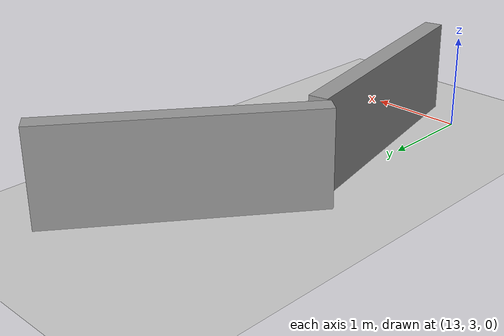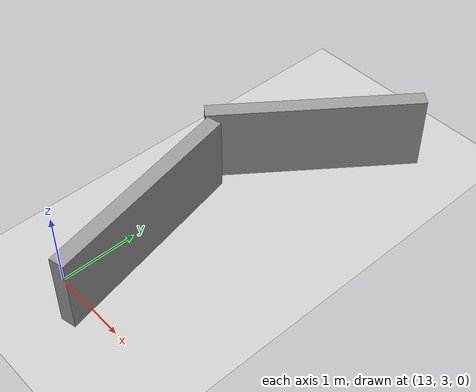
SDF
<sdf version="1.7">
 <world name="default">
  <model name="ground_plane">
   <static>1</static>
   <link name="link">
    <collision name="collision">
     <geometry><plane><normal>0 0 1</normal><size>100 100</size></plane></geometry>
     <surface>
      <contact><collide_bitmask>65535</collide_bitmask></contact>
      <friction><ode><mu>100</mu><mu2>50</mu2></ode></friction>
     </surface>
    </collision>
    <visual name="visual">
     <cast_shadows>0</cast_shadows>
     <geometry><plane><normal>0 0 1</normal><size>100 100</size></plane></geometry>
     <material>
      <script><uri>file://media/materials/scripts/gazebo.material</uri><name>Gazebo/Grey</name></script>
     </material>
    </visual>
   </link>
  </model>
  <model name="unit_box">
   <pose>13.5573 6.44071 0.5 -1e-06 1e-06 -0.647986</pose>
   <link name="link">
    <inertial>
     <mass>1</mass>
     <inertia>
      <ixx>0.166667</ixx>
      <ixy>0</ixy>
      <ixz>0</ixz>
      <iyy>0.166667</iyy>
      <iyz>0</iyz>
      <izz>0.166667</izz>
     </inertia>
    </inertial>
    <collision name="collision"><geometry><box><size>0.198117 2.69832 1</size></box></geometry></collision>
    <visual name="visual">
     <geometry><box><size>0.198117 2.69832 1</size></box></geometry>
     <material>
      <script><name>Gazebo/Grey</name><uri>file://media/materials/scripts/gazebo.material</uri></script>
     </material>
    </visual>
   </link>
  </model>
  <model name="unit_box_clone">
   <pose>13.2452 4.02133 0.499908 -6.9e-05 -2e-06 0.217639</pose>
   <link name="link">
    <inertial>
     <mass>1</mass>
     <inertia>
      <ixx>0.166667</ixx>
      <ixy>0</ixy>
      <ixz>0</ixz>
      <iyy>0.166667</iyy>
      <iyz>0</iyz>
      <izz>0.166667</izz>
     </inertia>
    </inertial>
    <collision name="collision"><geometry><box><size>0.198117 2.69832 1</size></box></geometry></collision>
    <visual name="visual">
     <geometry><box><size>0.198117 2.69832 1</size></box></geometry>
     <material>
      <script><name>Gazebo/Grey</name><uri>file://media/materials/scripts/gazebo.material</uri></script>
     </material>
    </visual>
   </link>
  </model>
 </world>
</sdf>
